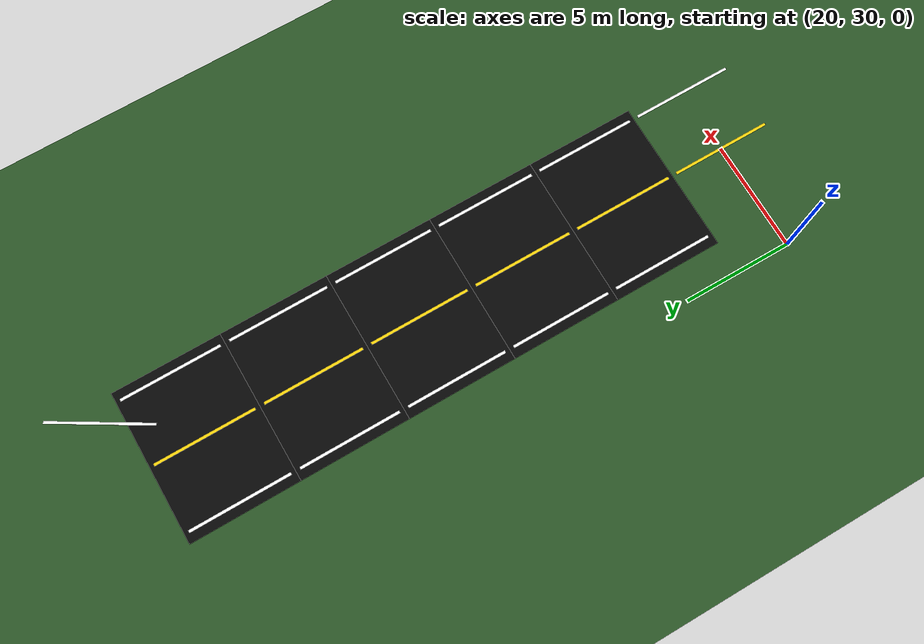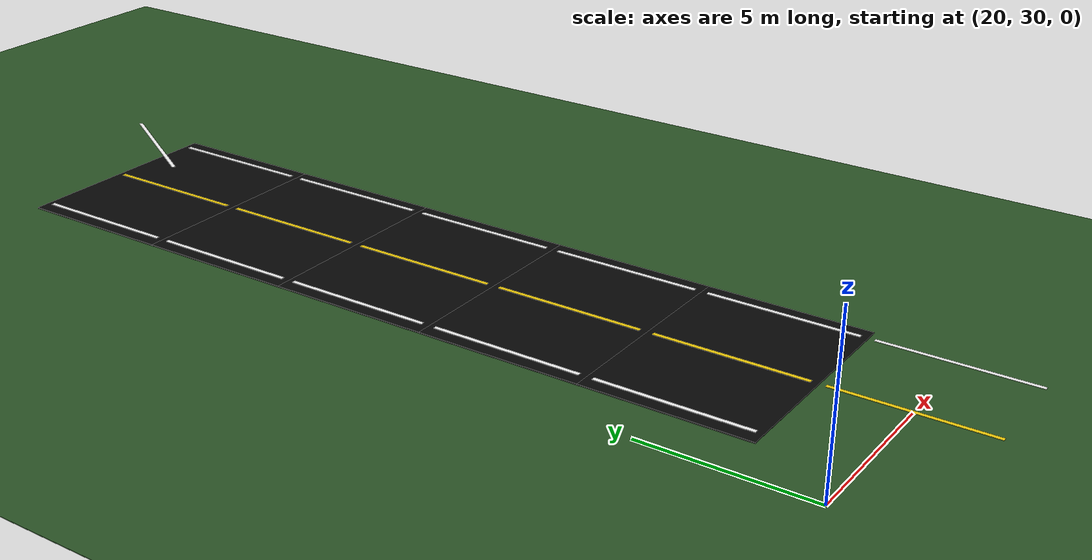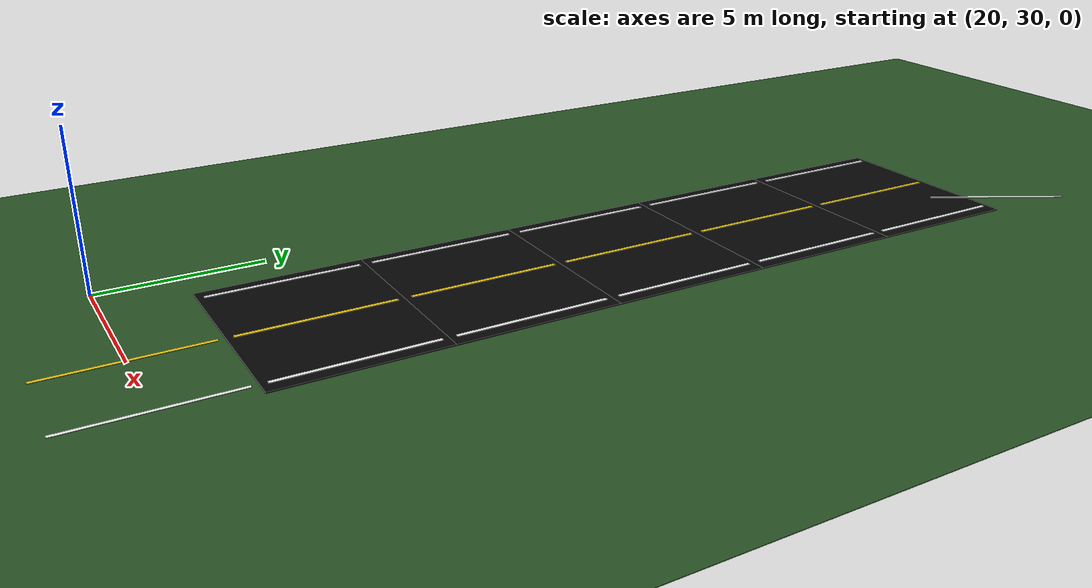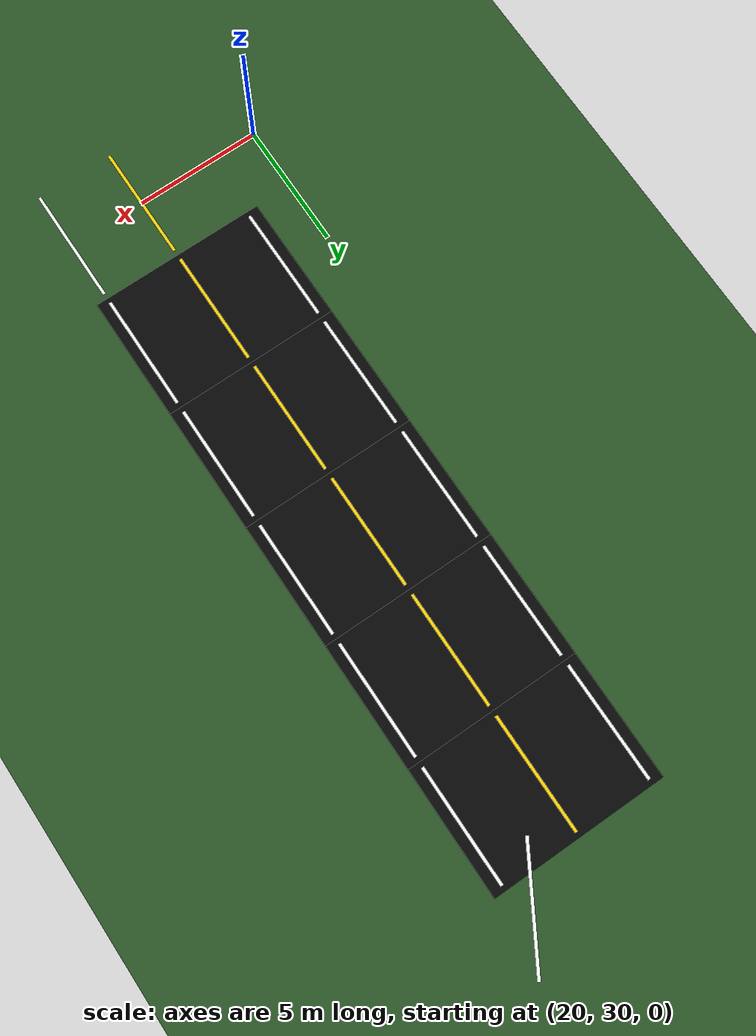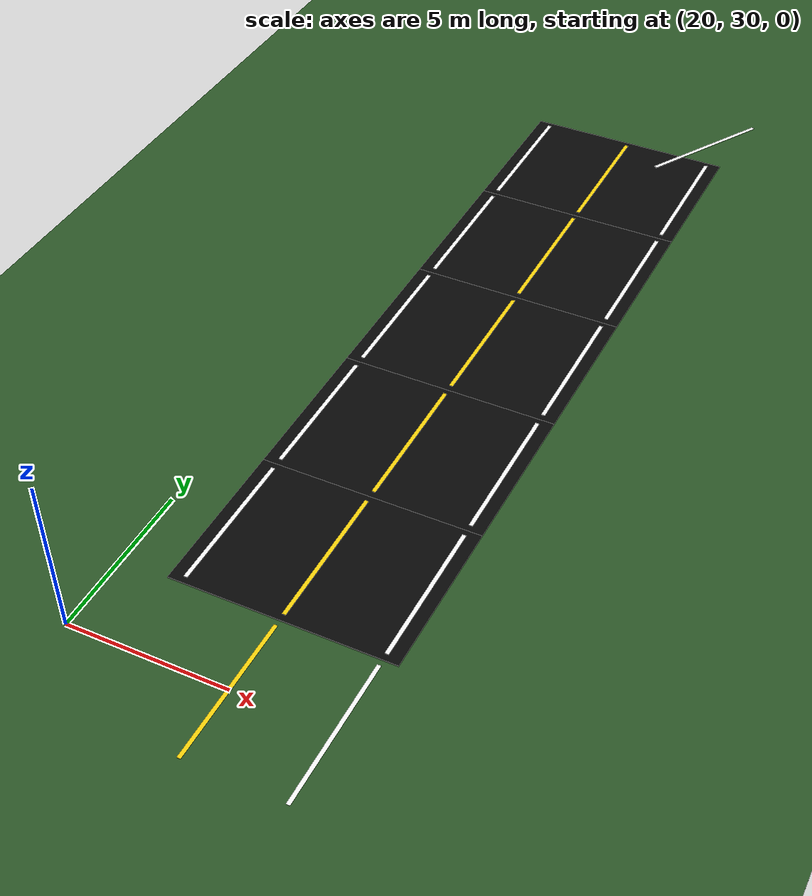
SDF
<sdf version="1.6">
 <world name="curved_road_world">
  <include><uri>model://sun</uri></include>
  <model name="grass_ground">
   <static>true</static>
   <pose>25 45 -0.02 0 0 0</pose>
   <link name="ground_link">
    <collision name="ground_collision"><geometry><box><size>160 180 0.02</size></box></geometry></collision>
    <visual name="ground_visual">
     <geometry><box><size>160 180 0.02</size></box></geometry>
     <material><ambient>0.18 0.35 0.16 1</ambient><diffuse>0.18 0.35 0.16 1</diffuse></material>
    </visual>
   </link>
  </model>
  <model name="road_post_curve_straight_03">
   <static>true</static>
   <pose>25.000 35.000 0.015 0 0 1.570796</pose>
   <link name="road_link">
    <collision name="road_collision"><geometry><box><size>5.000 7.000 0.04</size></box></geometry></collision>
    <visual name="road_visual">
     <geometry><box><size>5.000 7.000 0.04</size></box></geometry>
     <material>
      <ambient>0.025 0.025 0.025 1</ambient>
      <diffuse>0.035 0.035 0.035 1</diffuse>
      <specular>0.01 0.01 0.01 1</specular>
     </material>
    </visual>
   </link>
  </model>
  <model name="road_post_curve_straight_04">
   <static>true</static>
   <pose>25.000 40.000 0.015 0 0 1.570796</pose>
   <link name="road_link">
    <collision name="road_collision"><geometry><box><size>5.000 7.000 0.04</size></box></geometry></collision>
    <visual name="road_visual">
     <geometry><box><size>5.000 7.000 0.04</size></box></geometry>
     <material>
      <ambient>0.025 0.025 0.025 1</ambient>
      <diffuse>0.035 0.035 0.035 1</diffuse>
      <specular>0.01 0.01 0.01 1</specular>
     </material>
    </visual>
   </link>
  </model>
  <model name="road_post_curve_straight_05">
   <static>true</static>
   <pose>25.000 45.000 0.015 0 0 1.570796</pose>
   <link name="road_link">
    <collision name="road_collision"><geometry><box><size>5.000 7.000 0.04</size></box></geometry></collision>
    <visual name="road_visual">
     <geometry><box><size>5.000 7.000 0.04</size></box></geometry>
     <material>
      <ambient>0.025 0.025 0.025 1</ambient>
      <diffuse>0.035 0.035 0.035 1</diffuse>
      <specular>0.01 0.01 0.01 1</specular>
     </material>
    </visual>
   </link>
  </model>
  <model name="road_post_curve_straight_06">
   <static>true</static>
   <pose>25.000 50.000 0.015 0 0 1.570796</pose>
   <link name="road_link">
    <collision name="road_collision"><geometry><box><size>5.000 7.000 0.04</size></box></geometry></collision>
    <visual name="road_visual">
     <geometry><box><size>5.000 7.000 0.04</size></box></geometry>
     <material>
      <ambient>0.025 0.025 0.025 1</ambient>
      <diffuse>0.035 0.035 0.035 1</diffuse>
      <specular>0.01 0.01 0.01 1</specular>
     </material>
    </visual>
   </link>
  </model>
  <model name="road_post_curve_straight_07">
   <static>true</static>
   <pose>25.000 55.000 0.015 0 0 1.570796</pose>
   <link name="road_link">
    <collision name="road_collision"><geometry><box><size>5.000 7.000 0.04</size></box></geometry></collision>
    <visual name="road_visual">
     <geometry><box><size>5.000 7.000 0.04</size></box></geometry>
     <material>
      <ambient>0.025 0.025 0.025 1</ambient>
      <diffuse>0.035 0.035 0.035 1</diffuse>
      <specular>0.01 0.01 0.01 1</specular>
     </material>
    </visual>
   </link>
  </model>
  <model name="right_edge_post_curve_straight_02">
   <static>true</static>
   <pose>28.050 30.000 0.050 0 0 1.570796</pose>
   <link name="line_link">
    <visual name="line_visual">
     <geometry><box><size>4.600 0.120 0.012</size></box></geometry>
     <material><ambient>1 1 1 1</ambient><diffuse>1 1 1 1</diffuse></material>
    </visual>
   </link>
  </model>
  <model name="center_line_post_curve_straight_02">
   <static>true</static>
   <pose>25.000 30.000 0.050 0 0 1.570796</pose>
   <link name="line_link">
    <visual name="line_visual">
     <geometry><box><size>4.600 0.120 0.012</size></box></geometry>
     <material><ambient>1 0.85 0.05 1</ambient><diffuse>1 0.85 0.05 1</diffuse></material>
    </visual>
   </link>
  </model>
  <model name="left_edge_post_curve_straight_03">
   <static>true</static>
   <pose>21.950 35.000 0.050 0 0 1.570796</pose>
   <link name="line_link">
    <visual name="line_visual">
     <geometry><box><size>4.600 0.120 0.012</size></box></geometry>
     <material><ambient>1 1 1 1</ambient><diffuse>1 1 1 1</diffuse></material>
    </visual>
   </link>
  </model>
  <model name="right_edge_post_curve_straight_03">
   <static>true</static>
   <pose>28.050 35.000 0.050 0 0 1.570796</pose>
   <link name="line_link">
    <visual name="line_visual">
     <geometry><box><size>4.600 0.120 0.012</size></box></geometry>
     <material><ambient>1 1 1 1</ambient><diffuse>1 1 1 1</diffuse></material>
    </visual>
   </link>
  </model>
  <model name="center_line_post_curve_straight_03">
   <static>true</static>
   <pose>25.000 35.000 0.050 0 0 1.570796</pose>
   <link name="line_link">
    <visual name="line_visual">
     <geometry><box><size>4.600 0.120 0.012</size></box></geometry>
     <material><ambient>1 0.85 0.05 1</ambient><diffuse>1 0.85 0.05 1</diffuse></material>
    </visual>
   </link>
  </model>
  <model name="left_edge_post_curve_straight_04">
   <static>true</static>
   <pose>21.950 40.000 0.050 0 0 1.570796</pose>
   <link name="line_link">
    <visual name="line_visual">
     <geometry><box><size>4.600 0.120 0.012</size></box></geometry>
     <material><ambient>1 1 1 1</ambient><diffuse>1 1 1 1</diffuse></material>
    </visual>
   </link>
  </model>
  <model name="right_edge_post_curve_straight_04">
   <static>true</static>
   <pose>28.050 40.000 0.050 0 0 1.570796</pose>
   <link name="line_link">
    <visual name="line_visual">
     <geometry><box><size>4.600 0.120 0.012</size></box></geometry>
     <material><ambient>1 1 1 1</ambient><diffuse>1 1 1 1</diffuse></material>
    </visual>
   </link>
  </model>
  <model name="center_line_post_curve_straight_04">
   <static>true</static>
   <pose>25.000 40.000 0.050 0 0 1.570796</pose>
   <link name="line_link">
    <visual name="line_visual">
     <geometry><box><size>4.600 0.120 0.012</size></box></geometry>
     <material><ambient>1 0.85 0.05 1</ambient><diffuse>1 0.85 0.05 1</diffuse></material>
    </visual>
   </link>
  </model>
  <model name="left_edge_post_curve_straight_05">
   <static>true</static>
   <pose>21.950 45.000 0.050 0 0 1.570796</pose>
   <link name="line_link">
    <visual name="line_visual">
     <geometry><box><size>4.600 0.120 0.012</size></box></geometry>
     <material><ambient>1 1 1 1</ambient><diffuse>1 1 1 1</diffuse></material>
    </visual>
   </link>
  </model>
  <model name="right_edge_post_curve_straight_05">
   <static>true</static>
   <pose>28.050 45.000 0.050 0 0 1.570796</pose>
   <link name="line_link">
    <visual name="line_visual">
     <geometry><box><size>4.600 0.120 0.012</size></box></geometry>
     <material><ambient>1 1 1 1</ambient><diffuse>1 1 1 1</diffuse></material>
    </visual>
   </link>
  </model>
  <model name="center_line_post_curve_straight_05">
   <static>true</static>
   <pose>25.000 45.000 0.050 0 0 1.570796</pose>
   <link name="line_link">
    <visual name="line_visual">
     <geometry><box><size>4.600 0.120 0.012</size></box></geometry>
     <material><ambient>1 0.85 0.05 1</ambient><diffuse>1 0.85 0.05 1</diffuse></material>
    </visual>
   </link>
  </model>
  <model name="left_edge_post_curve_straight_06">
   <static>true</static>
   <pose>21.950 50.000 0.050 0 0 1.570796</pose>
   <link name="line_link">
    <visual name="line_visual">
     <geometry><box><size>4.600 0.120 0.012</size></box></geometry>
     <material><ambient>1 1 1 1</ambient><diffuse>1 1 1 1</diffuse></material>
    </visual>
   </link>
  </model>
  <model name="right_edge_post_curve_straight_06">
   <static>true</static>
   <pose>28.050 50.000 0.050 0 0 1.570796</pose>
   <link name="line_link">
    <visual name="line_visual">
     <geometry><box><size>4.600 0.120 0.012</size></box></geometry>
     <material><ambient>1 1 1 1</ambient><diffuse>1 1 1 1</diffuse></material>
    </visual>
   </link>
  </model>
  <model name="center_line_post_curve_straight_06">
   <static>true</static>
   <pose>25.000 50.000 0.050 0 0 1.570796</pose>
   <link name="line_link">
    <visual name="line_visual">
     <geometry><box><size>4.600 0.120 0.012</size></box></geometry>
     <material><ambient>1 0.85 0.05 1</ambient><diffuse>1 0.85 0.05 1</diffuse></material>
    </visual>
   </link>
  </model>
  <model name="left_edge_post_curve_straight_07">
   <static>true</static>
   <pose>21.950 55.000 0.050 0 0 1.570796</pose>
   <link name="line_link">
    <visual name="line_visual">
     <geometry><box><size>4.600 0.120 0.012</size></box></geometry>
     <material><ambient>1 1 1 1</ambient><diffuse>1 1 1 1</diffuse></material>
    </visual>
   </link>
  </model>
  <model name="right_edge_post_curve_straight_07">
   <static>true</static>
   <pose>28.050 55.000 0.050 0 0 1.570796</pose>
   <link name="line_link">
    <visual name="line_visual">
     <geometry><box><size>4.600 0.120 0.012</size></box></geometry>
     <material><ambient>1 1 1 1</ambient><diffuse>1 1 1 1</diffuse></material>
    </visual>
   </link>
  </model>
  <model name="center_line_post_curve_straight_07">
   <static>true</static>
   <pose>25.000 55.000 0.050 0 0 1.570796</pose>
   <link name="line_link">
    <visual name="line_visual">
     <geometry><box><size>4.600 0.120 0.012</size></box></geometry>
     <material><ambient>1 0.85 0.05 1</ambient><diffuse>1 0.85 0.05 1</diffuse></material>
    </visual>
   </link>
  </model>
  <model name="right_edge_small_s_curve_00">
   <static>true</static>
   <pose>27.615 58.431 0.050 0 0 1.030377</pose>
   <link name="line_link">
    <visual name="line_visual">
     <geometry><box><size>4.600 0.120 0.012</size></box></geometry>
     <material><ambient>1 1 1 1</ambient><diffuse>1 1 1 1</diffuse></material>
    </visual>
   </link>
  </model>
 </world>
</sdf>
